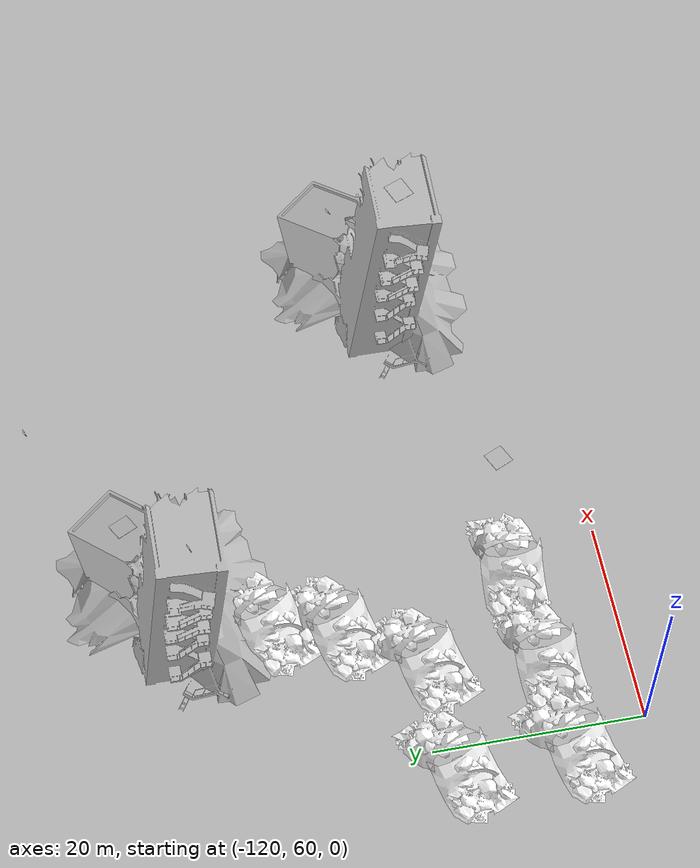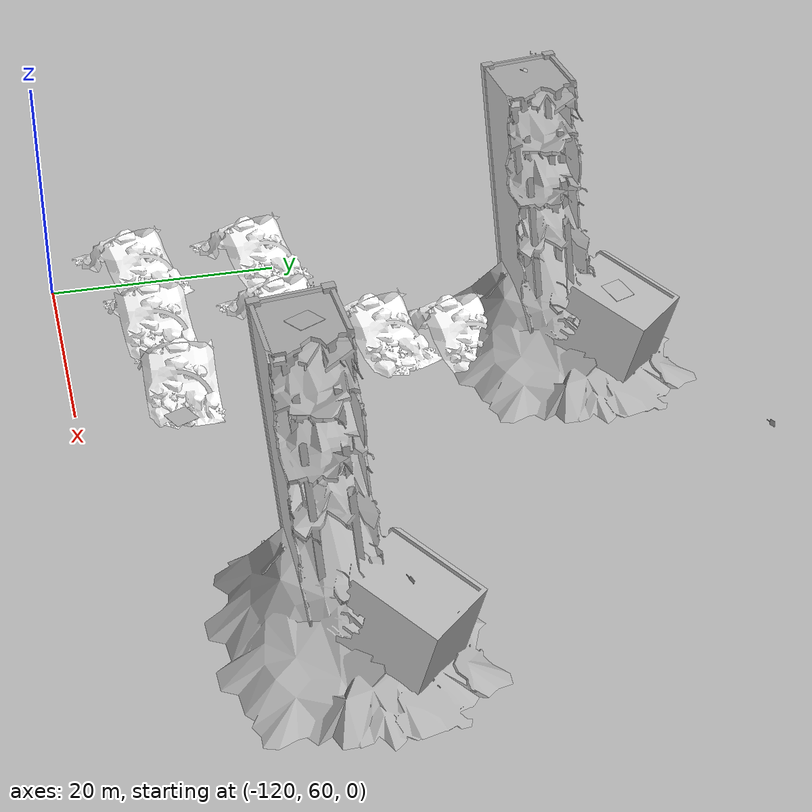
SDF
<sdf version="1.9">
 <world name="default">
  <physics type="ode">
   <max_step_size>0.004</max_step_size>
   <real_time_factor>1.0</real_time_factor>
   <real_time_update_rate>250</real_time_update_rate>
  </physics>
  <gravity>0 0 -9.8</gravity>
  <magnetic_field>6e-06 2.3e-05 -4.2e-05</magnetic_field>
  <atmosphere type="adiabatic"/>
  <scene>
   <grid>false</grid>
   <ambient>0.4 0.4 0.4 1</ambient>
   <background>0.7 0.7 0.7 1</background>
   <shadows>true</shadows>
  </scene>
  <light name="sunUTC" type="directional">
   <pose>0 0 500 0 -0 0</pose>
   <intensity>1</intensity>
   <direction>0.001 0.625 -0.78</direction>
   <diffuse>0.904 0.904 0.904 1</diffuse>
   <specular>0.271 0.271 0.271 1</specular>
   <attenuation><range>2000</range><linear>0</linear><constant>1</constant><quadratic>0</quadratic></attenuation>
   <spot><inner_angle>0</inner_angle><outer_angle>0</outer_angle><falloff>0</falloff></spot>
  </light>
  <spherical_coordinates>
   <surface_model>EARTH_WGS84</surface_model>
   <world_frame_orientation>ENU</world_frame_orientation>
   <latitude_deg>37.412173071650805</latitude_deg>
   <longitude_deg>-121.998878727967</longitude_deg>
   <elevation>38</elevation>
  </spherical_coordinates>
  <include>
   <uri>model://marker_0</uri>
   <name>aruco_marker_0</name>
   <pose>-93.408805847167969 67.470802307128906 3.853132963180542 2.7093537970131298 1.5707900273741637 -3.1408861898184788</pose>
  </include>
  <include>
   <uri>model://marker_1</uri>
   <name>aruco_marker_1</name>
   <pose>-74.44219970703125 73.996116638183594 23.234735488891602 0.34953919022361835 1.442090029017562 0.78670018859034374</pose>
  </include>
  <include>
   <uri>model://marker_2</uri>
   <name>aruco_marker_2</name>
   <pose>-64.03082275390625 79.127532958984375 8.4990978240966797 -2.984069985566836 1.2723399928116839 -2.5439699729045504</pose>
  </include>
  <include>
   <uri>model://marker_3</uri>
   <name>aruco_marker_3</name>
   <pose>-81.793121337890625 112.42037963867188 3.8079538345336914 2.7093537970018531 1.5707900273389155 -3.1408861898262121</pose>
  </include>
  <include>
   <uri>model://marker_4</uri>
   <name>aruco_marker_4</name>
   <pose>-96.923896789550781 104.27999877929688 8.5504398345947266 -2.9952591423397572 1.2871588987688476 -2.5560711177416993</pose>
  </include>
  <include>
   <uri>model://marker_5</uri>
   <name>aruco_marker_5</name>
   <pose>-108.13301086425781 99.353309631347656 23.136356353759766 0.3378409862404616 1.4445500015518304 0.77447798584605232</pose>
  </include>
  <include>
   <uri>model://tunnel_wall_debris</uri>
   <name>tunnelblocker_1</name>
   <pose>-104.06036376953124 92.897933959960938 0 0 0 -1.1310601126575641</pose>
  </include>
  <include>
   <uri>model://tunnel_wall_debris</uri>
   <name>tunnelblocker_2</name>
   <pose>-102.47899627685547 68.933799743652344 0 0 0 -1.5641030510939553</pose>
  </include>
  <include>
   <uri>model://tunnel_wall_debris</uri>
   <name>tunnelblocker_3</name>
   <pose>-121.70696258544922 67.388877868652344 0 0 0 -1.1310601126575641</pose>
  </include>
  <include>
   <uri>model://tunnel_wall_debris</uri>
   <name>tunnelblocker_4</name>
   <pose>-121.66629028320312 78.290420532226548 0 0 0 -1.1310601126575641</pose>
  </include>
  <include>
   <uri>model://tunnel_wall_debris</uri>
   <name>tunnelblocker_5</name>
   <pose>-105.78587341308594 86.396354675292969 0 0 0 -1.1310601126575641</pose>
  </include>
  <include>
   <uri>model://tunnel_wall_debris</uri>
   <name>tunnelblocker_6</name>
   <pose>-112.32290649414064 67.967514038085938 0 0 0 -1.4245999395024393</pose>
  </include>
  <include>
   <uri>model://tunnel_wall_debris</uri>
   <name>tunnelblocker_7</name>
   <pose>-110.60462951660155 79.02187347412108 0 0 0 -1.1310601126575641</pose>
  </include>
  <include>
   <uri>model://collapsed_industrial_building</uri>
   <name>collapsed_industrial_1</name>
   <pose>-101.57592010498047 100.67900085449219 0 0 0 0</pose>
  </include>
  <include>
   <uri>model://collapsed_industrial_building</uri>
   <name>collapsed_industrial_2</name>
   <pose>-68.941596616125167 75.23395412637629 0 0 0 0</pose>
  </include>
 </world>
</sdf>

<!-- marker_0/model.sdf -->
<sdf version="1.6">
  <model name="marker_0">
    <static>true</static>
    <link name="link">
      <visual name="visual">
        <geometry>
          <mesh>
            <uri>model://marker_0/meshes/marker_0.dae</uri>
          <scale>4.0 4.0 4.0</scale></mesh>
        </geometry>
      </visual>
    </link>

    <plugin
    filename="gz-sim-pose-publisher-system"
    name="gz::sim::systems::PosePublisher">
      <publish_link_pose>true</publish_link_pose>
      <use_pose_vector_msg>true</use_pose_vector_msg>
      <publish_nested_model_pose>true</publish_nested_model_pose>
      <static_publisher>true</static_publisher>
      <static_update_frequency>1</static_update_frequency>
    </plugin>

  </model>
</sdf>

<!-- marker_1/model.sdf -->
<sdf version="1.6">
  <model name="marker_1">
    <static>true</static>
    <link name="link">
      <visual name="visual">
        <geometry>
          <mesh>
            <uri>model://marker_1/meshes/marker_1.dae</uri>
          <scale>4.0 4.0 4.0</scale></mesh>
        </geometry>
      </visual>
    </link>
  </model>
</sdf>

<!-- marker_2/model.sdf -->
<sdf version="1.6">
  <model name="aruco_marker_2">
    <static>true</static>
    <link name="link">
      <!-- Support pole: top reaches the panel's lower edge (0.35 m), no overlap -->
      <visual name="pole">
        <pose>0 0 0.175 0 0 0</pose>
        <geometry><cylinder><radius>0.03</radius><length>0.35</length></cylinder></geometry>
        <material>
          <ambient>0.3 0.3 0.3 1</ambient>
          <diffuse>0.4 0.4 0.4 1</diffuse>
          <specular>0.1 0.1 0.1 1</specular>
        </material>
      </visual>
      <collision name="pole_col">
        <pose>0 0 0.175 0 0 0</pose>
        <geometry><cylinder><radius>0.03</radius><length>0.35</length></cylinder></geometry>
      </collision>
      <!-- Marker panel 0.50 m, center 0.6 m high; lower edge at 0.35 m -->
      <!-- Local +Y face carries the texture; world yaw aims it inward. -->
      <visual name="marker">
        <pose>0 0.011 0.6 1.5708 0 0</pose>
        <geometry><box><size>0.50 0.50 0.002</size></box></geometry>
        <material>
          <ambient>1.0 1.0 1.0 1</ambient>
          <diffuse>1.0 1.0 1.0 1</diffuse>
          <specular>0.0 0.0 0.0 1</specular>
          <pbr>
            <metal>
              <albedo_map>model://aruco/marker_2/materials/textures/marker_2.png</albedo_map>
              <metalness>0.0</metalness>
              <roughness>1.0</roughness>
            </metal>
          </pbr>
        </material>
      </visual>
      <collision name="marker_col">
        <pose>0 0 0.6 0 0 0</pose>
        <geometry><box><size>0.50 0.04 0.52</size></box></geometry>
      </collision>
      <!-- Opaque gray backing on the local -Y side: occludes the texture from
           behind so a camera facing the back cannot detect a mirrored (flipped) marker. -->
      <visual name="back_panel">
        <pose>0 -0.01 0.6 1.5708 0 0</pose>
        <geometry><box><size>0.52 0.52 0.005</size></box></geometry>
        <material>
          <ambient>0.5 0.5 0.5 1</ambient>
          <diffuse>0.5 0.5 0.5 1</diffuse>
          <specular>0.1 0.1 0.1 1</specular>
        </material>
      </visual>
    </link>
  </model>
</sdf>

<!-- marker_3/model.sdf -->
<sdf version="1.6">
  <model name="aruco_marker_3">
    <static>true</static>
    <link name="link">
      <!-- Support pole: top reaches the panel's lower edge (0.35 m), no overlap -->
      <visual name="pole">
        <pose>0 0 0.175 0 0 0</pose>
        <geometry><cylinder><radius>0.03</radius><length>0.35</length></cylinder></geometry>
        <material>
          <ambient>0.3 0.3 0.3 1</ambient>
          <diffuse>0.4 0.4 0.4 1</diffuse>
          <specular>0.1 0.1 0.1 1</specular>
        </material>
      </visual>
      <collision name="pole_col">
        <pose>0 0 0.175 0 0 0</pose>
        <geometry><cylinder><radius>0.03</radius><length>0.35</length></cylinder></geometry>
      </collision>
      <!-- Marker panel 0.50 m, center 0.6 m high; lower edge at 0.35 m -->
      <!-- Local +Y face carries the texture; world yaw aims it inward. -->
      <visual name="marker">
        <pose>0 0.011 0.6 1.5708 0 0</pose>
        <geometry><box><size>0.50 0.50 0.002</size></box></geometry>
        <material>
          <ambient>1.0 1.0 1.0 1</ambient>
          <diffuse>1.0 1.0 1.0 1</diffuse>
          <specular>0.0 0.0 0.0 1</specular>
          <pbr>
            <metal>
              <albedo_map>model://aruco/marker_3/materials/textures/marker_3.png</albedo_map>
              <metalness>0.0</metalness>
              <roughness>1.0</roughness>
            </metal>
          </pbr>
        </material>
      </visual>
      <collision name="marker_col">
        <pose>0 0 0.6 0 0 0</pose>
        <geometry><box><size>0.50 0.04 0.52</size></box></geometry>
      </collision>
      <!-- Opaque gray backing on the local -Y side: occludes the texture from
           behind so a camera facing the back cannot detect a mirrored (flipped) marker. -->
      <visual name="back_panel">
        <pose>0 -0.01 0.6 1.5708 0 0</pose>
        <geometry><box><size>0.52 0.52 0.005</size></box></geometry>
        <material>
          <ambient>0.5 0.5 0.5 1</ambient>
          <diffuse>0.5 0.5 0.5 1</diffuse>
          <specular>0.1 0.1 0.1 1</specular>
        </material>
      </visual>
    </link>
  </model>
</sdf>

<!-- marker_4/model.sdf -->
<sdf version="1.6">
  <model name="marker_4">
    <static>true</static>
    <link name="link">
      <visual name="visual">
        <geometry>
          <mesh>
            <uri>model://marker_4/meshes/marker_4.dae</uri>
          <scale>4.0 4.0 4.0</scale></mesh>
        </geometry>
      </visual>
    </link>
  </model>
</sdf>df

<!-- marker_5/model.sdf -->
<sdf version="1.6">
  <model name="aruco_marker_5">
    <static>true</static>
    <link name="link">
      <!-- Support pole: top reaches the panel's lower edge (0.35 m), no overlap -->
      <visual name="pole">
        <pose>0 0 0.175 0 0 0</pose>
        <geometry><cylinder><radius>0.03</radius><length>0.35</length></cylinder></geometry>
        <material>
          <ambient>0.3 0.3 0.3 1</ambient>
          <diffuse>0.4 0.4 0.4 1</diffuse>
          <specular>0.1 0.1 0.1 1</specular>
        </material>
      </visual>
      <collision name="pole_col">
        <pose>0 0 0.175 0 0 0</pose>
        <geometry><cylinder><radius>0.03</radius><length>0.35</length></cylinder></geometry>
      </collision>
      <!-- Marker panel 0.50 m, center 0.6 m high; lower edge at 0.35 m -->
      <!-- Local +Y face carries the texture; world yaw aims it inward. -->
      <visual name="marker">
        <pose>0 0.011 0.6 1.5708 0 0</pose>
        <geometry><box><size>0.50 0.50 0.002</size></box></geometry>
        <material>
          <ambient>1.0 1.0 1.0 1</ambient>
          <diffuse>1.0 1.0 1.0 1</diffuse>
          <specular>0.0 0.0 0.0 1</specular>
          <pbr>
            <metal>
              <albedo_map>model://aruco/marker_5/materials/textures/marker_5.png</albedo_map>
              <metalness>0.0</metalness>
              <roughness>1.0</roughness>
            </metal>
          </pbr>
        </material>
      </visual>
      <collision name="marker_col">
        <pose>0 0 0.6 0 0 0</pose>
        <geometry><box><size>0.50 0.04 0.52</size></box></geometry>
      </collision>
    </link>
  </model>
</sdf>

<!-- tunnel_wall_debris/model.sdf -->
<sdf version="1.6">
    <model name="tunnelblocker">
        <static>true</static>
        <link name="base_link">
            <collision name="collision">
                <pose>0 0 0 0 0 0</pose>
                <geometry>
                    <mesh>
                        <uri>meshes/tunnelblocker.dae</uri>
                        <scale>1.0 1.0 1.0</scale>
                    </mesh>
                </geometry>
            </collision>
            <visual name="Walls_visual">
                <geometry>
                    <mesh>
                        <uri>meshes/tunnelblocker.dae</uri>
                        <submesh>
                            <name>Walls</name>
                            <center>false</center>
                        </submesh>
                    </mesh>
                </geometry>
                <material>
                    <diffuse>1.0 1.0 1.0</diffuse>
                    <specular>1.0 1.0 1.0</specular>
                    <pbr>
                        <metal>
                            <albedo_map>materials/textures/Walls_Albedo.jpg</albedo_map>
                            <normal_map>materials/textures/Walls_Normal.jpg</normal_map>
                            <metalness_map>materials/textures/Walls_Metalness.jpg</metalness_map>
                            <roughness_map>materials/textures/Walls_Roughness.jpg</roughness_map>
                        </metal>
                    </pbr>
                </material>
            </visual>
            <visual name="Chainlink_visual">
                <geometry>
                    <mesh>
                        <uri>meshes/tunnelblocker.dae</uri>
                        <submesh>
                            <name>Chainlink</name>
                            <center>false</center>
                        </submesh>
                    </mesh>
                </geometry>
                <material>
                    <diffuse>1.0 1.0 1.0</diffuse>
                    <specular>1.0 1.0 1.0</specular>
                    <pbr>
                        <metal>
                            <albedo_map>materials/textures/Chainlink_Albedo.jpg</albedo_map>
                            <normal_map>materials/textures/Chainlink_Normal.jpg</normal_map>
                            <metalness_map>materials/textures/Chainlink_Metalness.jpg</metalness_map>
                            <roughness_map>materials/textures/Chainlink_Roughness.jpg</roughness_map>
                        </metal>
                    </pbr>
                </material>
            </visual>
            <visual name="Ground_visual">
                <geometry>
                    <mesh>
                        <uri>meshes/tunnelblocker.dae</uri>
                        <submesh>
                            <name>Ground</name>
                            <center>false</center>
                        </submesh>
                    </mesh>
                </geometry>
                <material>
                    <diffuse>1.0 1.0 1.0</diffuse>
                    <specular>1.0 1.0 1.0</specular>
                    <pbr>
                        <metal>
                            <albedo_map>materials/textures/Ground_Albedo.jpg</albedo_map>
                            <normal_map>materials/textures/Ground_Normal.jpg</normal_map>
                            <roughness_map>materials/textures/Ground_Roughness.jpg</roughness_map>
                        </metal>
                    </pbr>
                </material>
            </visual>
            <visual name="RockPile_visual">
                <geometry>
                    <mesh>
                        <uri>meshes/tunnelblocker.dae</uri>
                        <submesh>
                            <name>RockPile</name>
                            <center>false</center>
                        </submesh>
                    </mesh>
                </geometry>
                <material>
                    <diffuse>1.0 1.0 1.0</diffuse>
                    <specular>1.0 1.0 1.0</specular>
                    <pbr>
                        <metal>
                            <albedo_map>materials/textures/RockPile_Albedo.jpg</albedo_map>
                            <normal_map>materials/textures/RockPile_Normal.jpg</normal_map>
                            <roughness_map>materials/textures/RockPile_Roughness.jpg</roughness_map>
                        </metal>
                    </pbr>
                </material>
            </visual>
            <visual name="Rocks_visual">
                <geometry>
                    <mesh>
                        <uri>meshes/tunnelblocker.dae</uri>
                        <submesh>
                            <name>Rocks</name>
                            <center>false</center>
                        </submesh>
                    </mesh>
                </geometry>
                <material>
                    <diffuse>1.0 1.0 1.0</diffuse>
                    <specular>1.0 1.0 1.0</specular>
                    <pbr>
                        <metal>
                            <albedo_map>materials/textures/Rocks_Albedo.jpg</albedo_map>
                            <normal_map>materials/textures/Rocks_Normal.jpg</normal_map>
                            <roughness_map>materials/textures/Rocks_Roughness.jpg</roughness_map>
                        </metal>
                    </pbr>
                </material>
            </visual>
        </link>
    </model>
</sdf>

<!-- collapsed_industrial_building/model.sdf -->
<sdf version="1.6">
    <model name="collapsed_industrial">
        <static>true</static>
        <link name="link">
            <collision name="collision">
                <geometry>
                    <mesh>
                        <uri>model://collapsed_industrial_building/meshes/collapsed_industrial.dae</uri>
                    </mesh>
                </geometry>
            </collision>
            <visual name="visual">
                <geometry>
                    <mesh>
                        <uri>model://collapsed_industrial_building/meshes/collapsed_industrial.dae</uri>
                    </mesh>
                </geometry>
            </visual>
        </link>
    </model>
</sdf>
